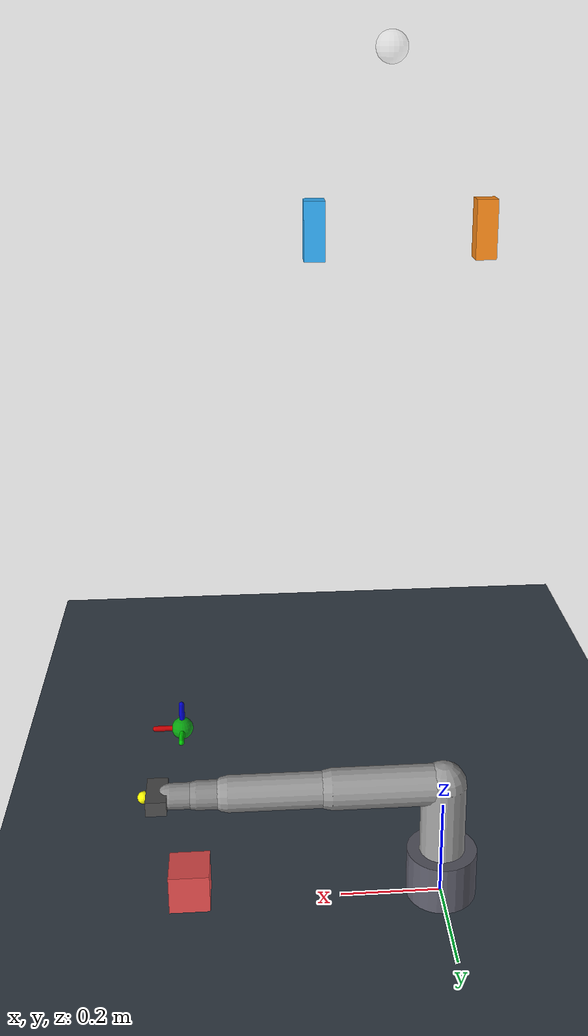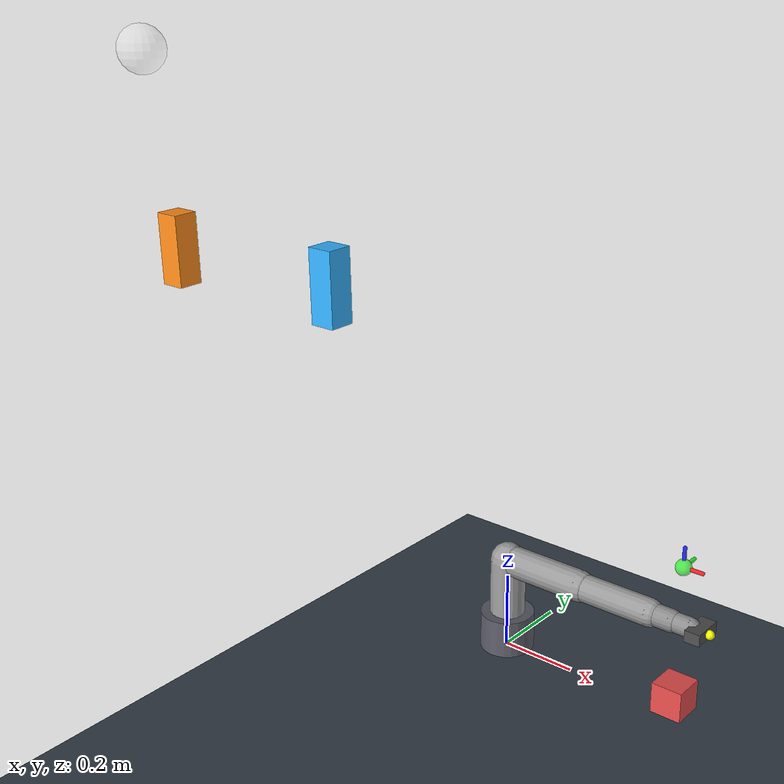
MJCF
<mujoco model="vr_arm">
  <option timestep="0.002" iterations="50" gravity="0 0 0"/>
  <visual>
    <global offwidth="1280" offheight="480"/>
    <quality offsamples="4"/>
    <headlight diffuse="0.7 0.7 0.7" ambient="0.3 0.3 0.3" specular="0.2 0.2 0.2"/>
  </visual>
  <asset>
    <texture name="skybox" type="skybox" builtin="gradient" rgb1="0.5 0.7 0.9" rgb2="0.1 0.15 0.25" width="256" height="256"/>
    <texture name="grid" type="2d" builtin="checker" rgb1="0.25 0.3 0.35" rgb2="0.15 0.18 0.22" width="512" height="512"/>
    <material name="grid" texture="grid" texrepeat="10 10" reflectance="0.1"/>
  </asset>

  <default>
    <joint armature="0.3" damping="20" limited="true"/>
    <position kp="3000" kv="50" forcerange="-500 500"/>
  </default>

  <worldbody>
    <light pos="2 2 4" dir="-0.5 -0.5 -1"/>
    <geom name="floor" type="plane" size="3 3 0.1" material="grid"/>

    <!-- Object the user can try to push around with the TCP. -->
    <body name="cube" pos="0.5 0.0 0.05">
      <freejoint/>
      <geom type="box" size="0.04 0.04 0.04" rgba="0.9 0.3 0.3 1" mass="0.1"/>
    </body>

    <!-- Live visualization of the VR target pose (green). -->
    <body name="vr_target_marker" mocap="true" pos="0.5 0 0.4">
      <geom type="sphere" size="0.02" rgba="0 1 0 0.6" contype="0" conaffinity="0"/>
      <geom type="capsule" fromto="0 0 0 0.05 0 0" size="0.005" rgba="1 0 0 0.8" contype="0" conaffinity="0"/>
      <geom type="capsule" fromto="0 0 0 0 0.05 0" size="0.005" rgba="0 1 0 0.8" contype="0" conaffinity="0"/>
      <geom type="capsule" fromto="0 0 0 0 0 0.05" size="0.005" rgba="0 0 1 0.8" contype="0" conaffinity="0"/>
    </body>

    <!-- 6-DOF arm. -->
    <body name="base" pos="0 0 0.05">
      <geom type="cylinder" size="0.07 0.05" rgba="0.35 0.35 0.4 1"/>
      <body name="link1" pos="0 0 0.05">
        <joint name="j1" axis="0 0 1" range="-3.0 3.0"/>
        <geom type="capsule" fromto="0 0 0  0 0 0.15" size="0.045" rgba="0.6 0.6 0.6 1"/>
        <body name="link2" pos="0 0 0.15">
          <joint name="j2" axis="0 1 0" range="-2.4 2.4"/>
          <geom type="capsule" fromto="0 0 0  0.22 0 0" size="0.04" rgba="0.6 0.6 0.6 1"/>
          <body name="link3" pos="0.22 0 0">
            <joint name="j3" axis="0 1 0" range="-2.6 2.6"/>
            <geom type="capsule" fromto="0 0 0  0.20 0 0" size="0.035" rgba="0.6 0.6 0.6 1"/>
            <body name="link4" pos="0.20 0 0">
              <joint name="j4" axis="1 0 0" range="-3.0 3.0"/>
              <geom type="capsule" fromto="0 0 0  0.06 0 0" size="0.028" rgba="0.55 0.55 0.55 1"/>
              <body name="link5" pos="0.06 0 0">
                <joint name="j5" axis="0 1 0" range="-2.0 2.0"/>
                <geom type="capsule" fromto="0 0 0  0.05 0 0" size="0.025" rgba="0.55 0.55 0.55 1"/>
                <body name="link6" pos="0.05 0 0">
                  <joint name="j6" axis="1 0 0" range="-3.0 3.0"/>
                  <geom type="box" pos="0.025 0 0" size="0.02 0.04 0.015" rgba="0.3 0.3 0.3 1"/>
                  <site name="tcp" pos="0.05 0 0" size="0.012" rgba="1 1 0 1"/>
                </body>
              </body>
            </body>
          </body>
        </body>
      </body>
    </body>

    <!-- VR rig: head + L/R controllers. -->
    <body name="head" mocap="true" pos="0 -1.0 1.6">
      <geom type="sphere" size="0.04" rgba="1 1 1 0.25" contype="0" conaffinity="0"/>
      <camera name="left_eye"  pos="-0.032 0 0" fovy="90"/>
      <camera name="right_eye" pos=" 0.032 0 0" fovy="90"/>
    </body>
    <body name="controller_left" mocap="true" pos="-0.2 -0.8 1.2">
      <geom type="box" size="0.025 0.025 0.07" rgba="1.0 0.55 0.1 1" contype="0" conaffinity="0"/>
    </body>
    <body name="controller_right" mocap="true" pos="0.2 -0.8 1.2">
      <geom type="box" size="0.025 0.025 0.07" rgba="0.2 0.7 1.0 1" contype="0" conaffinity="0"/>
    </body>
  </worldbody>

  <actuator>
    <position name="a1" joint="j1"/>
    <position name="a2" joint="j2"/>
    <position name="a3" joint="j3"/>
    <position name="a4" joint="j4"/>
    <position name="a5" joint="j5"/>
    <position name="a6" joint="j6"/>
  </actuator>
</mujoco>
